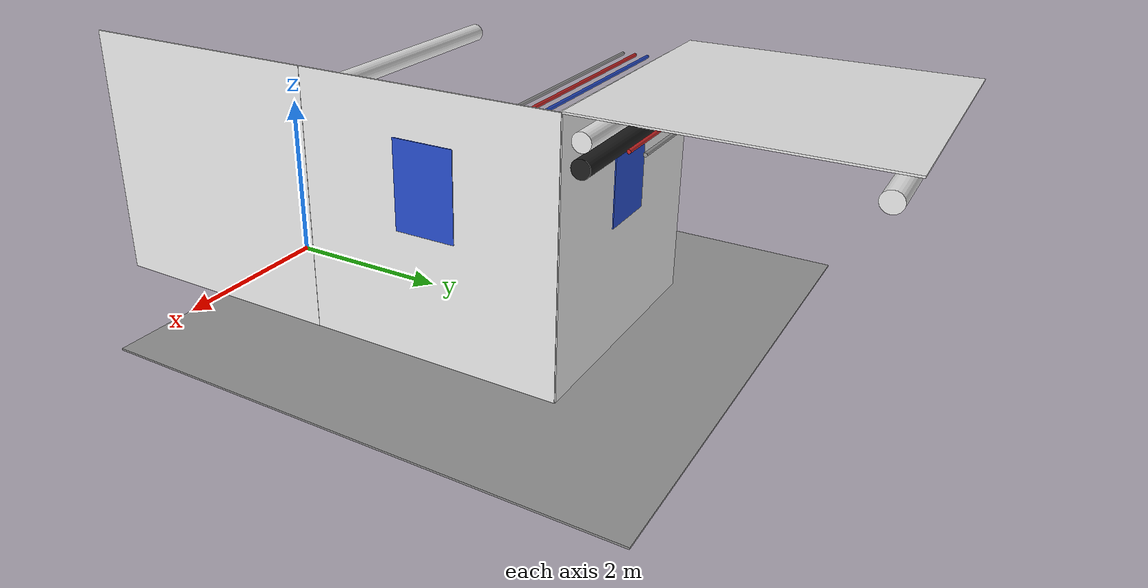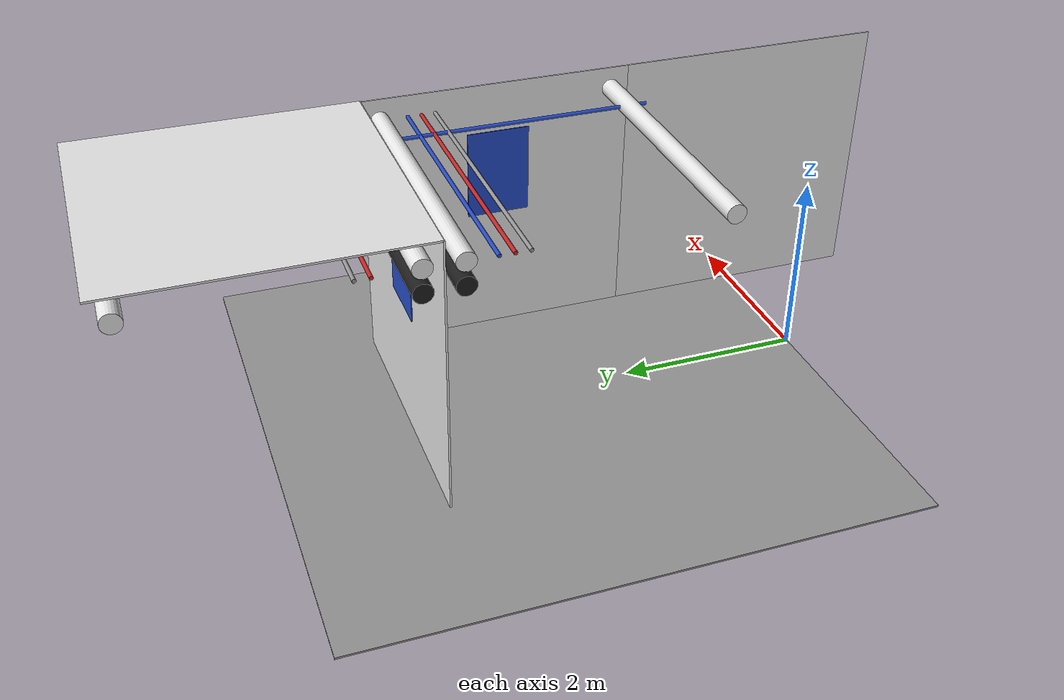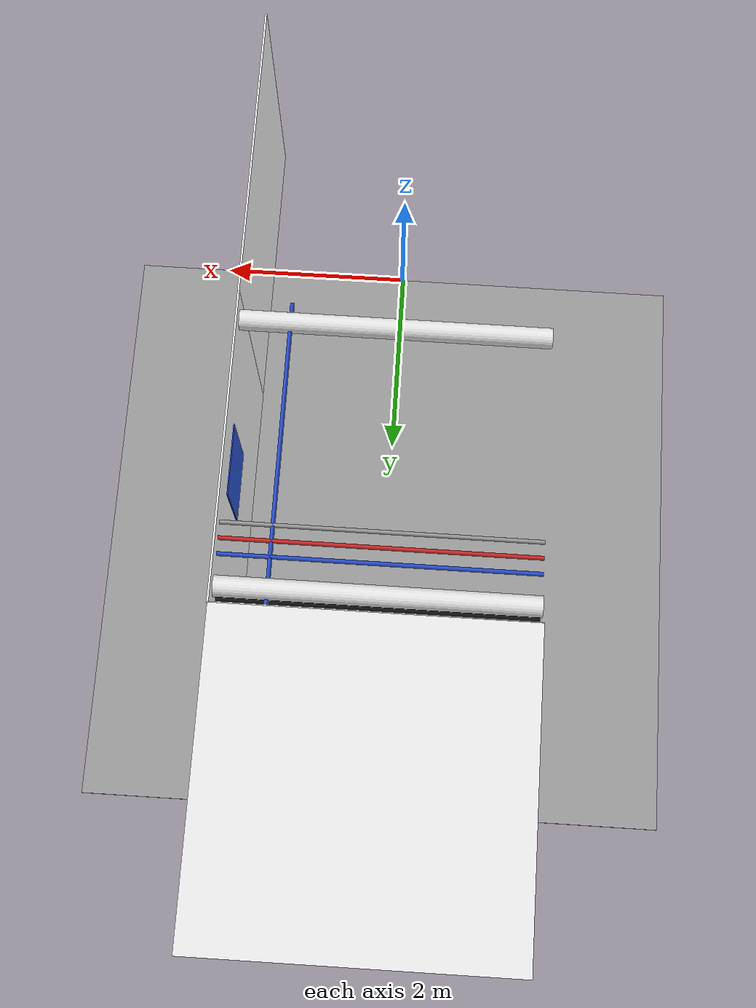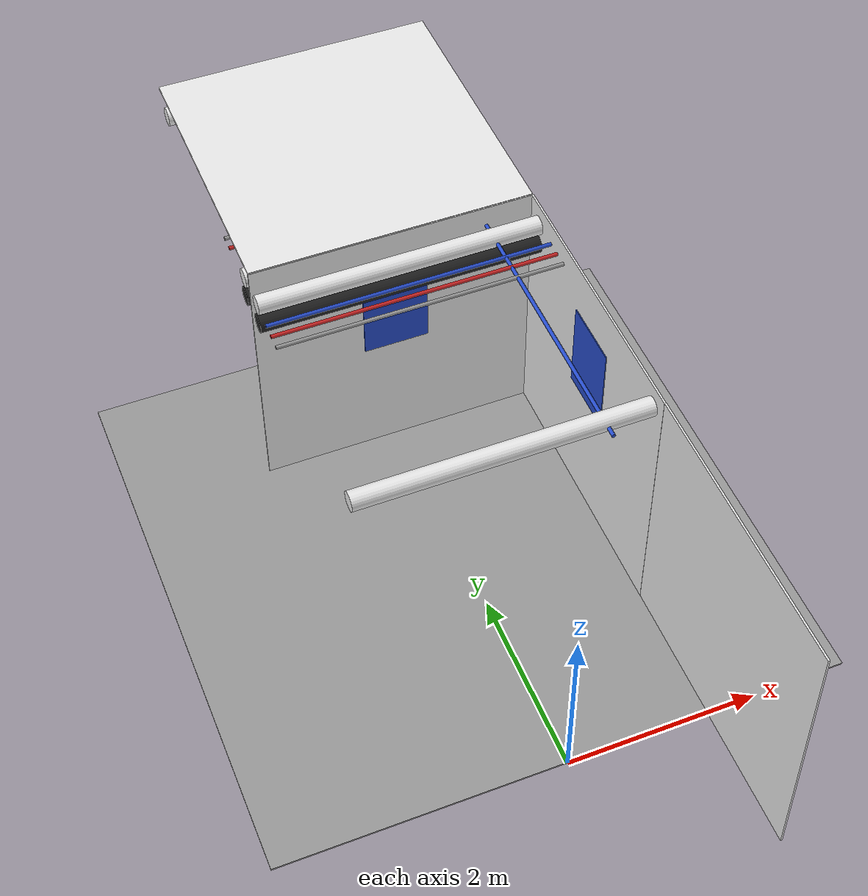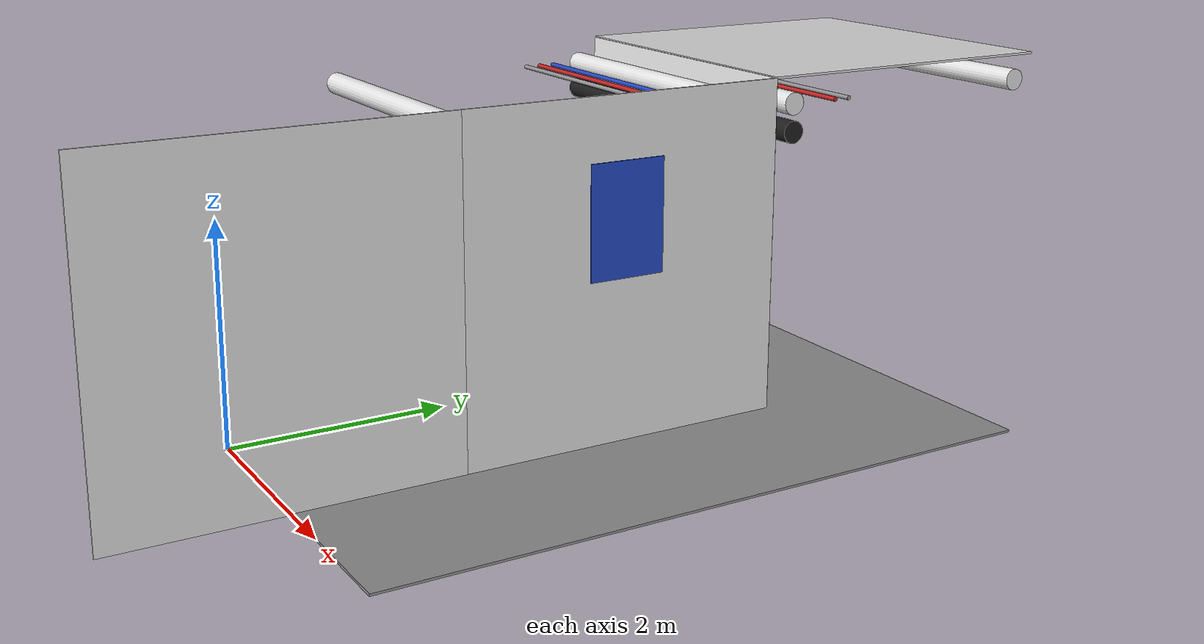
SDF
<sdf version="1.6">
 <world name="default">
  <model name="wall_right_0_0_0_0">
   <static>1</static>
   <pose>1.5 0.0 1.5 0.0 0.0 1.57</pose>
   <link name="link">
    <collision name="collision"><geometry><box><size>3.0 0.02 3.0</size></box></geometry></collision>
    <visual name="visual">
     <material>
      <script><name>Gazebo/White</name><uri>file://media/materials/scripts/gazebo.material</uri></script>
     </material>
     <geometry><box><size>3.0 0.02 3.0</size></box></geometry>
    </visual>
   </link>
  </model>
  <model name="wall_right_0_1_0_3">
   <static>1</static>
   <pose>1.5 3.0 1.5 0.0 0.0 1.57</pose>
   <link name="link">
    <collision name="collision"><geometry><box><size>3.0 0.02 3.0</size></box></geometry></collision>
    <visual name="visual">
     <material>
      <script><name>Gazebo/White</name><uri>file://media/materials/scripts/gazebo.material</uri></script>
     </material>
     <geometry><box><size>3.0 0.02 3.0</size></box></geometry>
    </visual>
   </link>
  </model>
  <model name="blue_pipe_right_0_1_0_3">
   <static>1</static>
   <pose>0.0 3.0 2.76 0.0 0.0 0.0</pose>
   <link name="link_0">
    <visual name="visual">
     <pose>1 0 0 1.57 0 0</pose>
     <geometry><cylinder><radius>0.02</radius><length>3.0</length></cylinder></geometry>
     <material>
      <script><uri>file://media/materials/scripts/gazebo.material</uri><name>Gazebo/Blue</name></script>
     </material>
    </visual>
    <collision name="collision">
     <pose>1 0 0 1.57 0 0</pose>
     <geometry><cylinder><radius>0.02</radius><length>3.0</length></cylinder></geometry>
    </collision>
   </link>
  </model>
  <model name="white_pipe_left_1_0_1_0_3">
   <static>1</static>
   <pose>0.0 3.0 2.76 0.0 0.0 1.57</pose>
   <link name="link_0">
    <visual name="visual">
     <pose>-1.3 0 0 1.57 0 0</pose>
     <geometry><cylinder><radius>0.1</radius><length>3.0</length></cylinder></geometry>
     <material>
      <script><uri>file://media/materials/scripts/gazebo.material</uri><name>Gazebo/White</name></script>
     </material>
    </visual>
    <collision name="collision">
     <pose>-1.3 0 0 1.57 0 0</pose>
     <geometry><cylinder><radius>0.1</radius><length>3.0</length></cylinder></geometry>
    </collision>
   </link>
  </model>
  <model name="white_pipe_right_1_0_1_0_3">
   <static>1</static>
   <pose>0.0 3.0 2.76 0.0 0.0 1.57</pose>
   <link name="link_0">
    <visual name="visual">
     <pose>1.3 0 0 1.57 0 0</pose>
     <geometry><cylinder><radius>0.1</radius><length>3.0</length></cylinder></geometry>
     <material>
      <script><uri>file://media/materials/scripts/gazebo.material</uri><name>Gazebo/White</name></script>
     </material>
    </visual>
    <collision name="collision">
     <pose>1.3 0 0 1.57 0 0</pose>
     <geometry><cylinder><radius>0.1</radius><length>3.0</length></cylinder></geometry>
    </collision>
   </link>
  </model>
  <model name="black_pipe_right_1_0_1_0_3">
   <static>1</static>
   <pose>0.0 3.0 2.76 0.0 0.0 1.57</pose>
   <link name="link_0">
    <visual name="visual">
     <pose>1.3 0 -0.25 1.57 0 0</pose>
     <geometry><cylinder><radius>0.1</radius><length>3.0</length></cylinder></geometry>
     <material>
      <script><uri>file://media/materials/scripts/gazebo.material</uri><name>Gazebo/Black</name></script>
     </material>
    </visual>
    <collision name="collision">
     <pose>1.3 0 -0.25 1.57 0 0</pose>
     <geometry><cylinder><radius>0.1</radius><length>3.0</length></cylinder></geometry>
    </collision>
   </link>
  </model>
  <model name="grey_pipe_right_1_0_1_0_3">
   <static>1</static>
   <pose>0.0 3.0 2.76 0.0 0.0 1.57</pose>
   <link name="link_0">
    <visual name="visual">
     <pose>0.7 0 0 1.57 0 0</pose>
     <geometry><cylinder><radius>0.02</radius><length>3.0</length></cylinder></geometry>
     <material>
      <script><uri>file://media/materials/scripts/gazebo.material</uri><name>Gazebo/Grey</name></script>
     </material>
    </visual>
    <collision name="collision">
     <pose>0.7 0 0 1.57 0 0</pose>
     <geometry><cylinder><radius>0.02</radius><length>3.0</length></cylinder></geometry>
    </collision>
   </link>
  </model>
  <model name="red_pipe_right_1_0_1_0_3">
   <static>1</static>
   <pose>0.0 3.0 2.76 0.0 0.0 1.57</pose>
   <link name="link_0">
    <visual name="visual">
     <pose>0.85 0 0 1.57 0 0</pose>
     <geometry><cylinder><radius>0.02</radius><length>3.0</length></cylinder></geometry>
     <material>
      <script><uri>file://media/materials/scripts/gazebo.material</uri><name>Gazebo/Red</name></script>
     </material>
    </visual>
    <collision name="collision">
     <pose>0.85 0 0 1.57 0 0</pose>
     <geometry><cylinder><radius>0.02</radius><length>3.0</length></cylinder></geometry>
    </collision>
   </link>
  </model>
  <model name="blue_pipe_right_1_0_1_0_3">
   <static>1</static>
   <pose>0.0 3.0 2.76 0.0 0.0 1.57</pose>
   <link name="link_0">
    <visual name="visual">
     <pose>1 0 0 1.57 0 0</pose>
     <geometry><cylinder><radius>0.02</radius><length>3.0</length></cylinder></geometry>
     <material>
      <script><uri>file://media/materials/scripts/gazebo.material</uri><name>Gazebo/Blue</name></script>
     </material>
    </visual>
    <collision name="collision">
     <pose>1 0 0 1.57 0 0</pose>
     <geometry><cylinder><radius>0.02</radius><length>3.0</length></cylinder></geometry>
    </collision>
   </link>
  </model>
  <model name="panel_0_1_0_3">
   <static>1</static>
   <pose>1.5 3.0 1.95 0.0 0.0 0.0</pose>
   <link name="link">
    <collision name="collision"><geometry><box><size>0.04 0.7 1</size></box></geometry></collision>
    <visual name="visual">
     <material>
      <script><name>Gazebo/Blue</name><uri>file://media/materials/scripts/gazebo.material</uri></script>
     </material>
     <geometry><box><size>0.04 0.7 1</size></box></geometry>
    </visual>
   </link>
  </model>
  <model name="wall_bottom_0_1_0_3">
   <static>1</static>
   <pose>0.0 3.0 0.0 0.0 0.0 0.0</pose>
   <link name="link">
    <collision name="collision"><geometry><box><size>6.0 6.0 0.02</size></box></geometry></collision>
    <visual name="visual">
     <material>
      <script><name>Gazebo/Grey</name><uri>file://media/materials/scripts/gazebo.material</uri></script>
     </material>
     <geometry><box><size>6.0 6.0 0.02</size></box></geometry>
    </visual>
   </link>
  </model>
  <model name="wall_right_0_2_0_3">
   <static>1</static>
   <pose>0.0 4.5 1.5 0.0 0.0 0.0</pose>
   <link name="link">
    <collision name="collision"><geometry><box><size>3.0 0.02 3.0</size></box></geometry></collision>
    <visual name="visual">
     <material>
      <script><name>Gazebo/White</name><uri>file://media/materials/scripts/gazebo.material</uri></script>
     </material>
     <geometry><box><size>3.0 0.02 3.0</size></box></geometry>
    </visual>
   </link>
  </model>
  <model name="wall_top_0_2_0_3">
   <static>1</static>
   <pose>0.0 6.0 3.0 1.57 0.0 -1.57</pose>
   <link name="link">
    <collision name="collision"><geometry><box><size>3.0 0.02 3.0</size></box></geometry></collision>
    <visual name="visual">
     <material>
      <script><name>Gazebo/White</name><uri>file://media/materials/scripts/gazebo.material</uri></script>
     </material>
     <geometry><box><size>3.0 0.02 3.0</size></box></geometry>
    </visual>
   </link>
  </model>
  <model name="white_pipe_left_0_2_0_3">
   <static>1</static>
   <pose>0.0 6.0 2.76 0.0 0.0 -1.57</pose>
   <link name="link_0">
    <visual name="visual">
     <pose>-1.3 0 0 1.57 0 0</pose>
     <geometry><cylinder><radius>0.1</radius><length>3.0</length></cylinder></geometry>
     <material>
      <script><uri>file://media/materials/scripts/gazebo.material</uri><name>Gazebo/White</name></script>
     </material>
    </visual>
    <collision name="collision">
     <pose>-1.3 0 0 1.57 0 0</pose>
     <geometry><cylinder><radius>0.1</radius><length>3.0</length></cylinder></geometry>
    </collision>
   </link>
  </model>
  <model name="white_pipe_right_0_2_0_3">
   <static>1</static>
   <pose>0.0 6.0 2.76 0.0 0.0 -1.57</pose>
   <link name="link_0">
    <visual name="visual">
     <pose>1.3 0 0 1.57 0 0</pose>
     <geometry><cylinder><radius>0.1</radius><length>3.0</length></cylinder></geometry>
     <material>
      <script><uri>file://media/materials/scripts/gazebo.material</uri><name>Gazebo/White</name></script>
     </material>
    </visual>
    <collision name="collision">
     <pose>1.3 0 0 1.57 0 0</pose>
     <geometry><cylinder><radius>0.1</radius><length>3.0</length></cylinder></geometry>
    </collision>
   </link>
  </model>
  <model name="black_pipe_right_0_2_0_3">
   <static>1</static>
   <pose>0.0 6.0 2.76 0.0 0.0 -1.57</pose>
   <link name="link_0">
    <visual name="visual">
     <pose>1.3 0 -0.25 1.57 0 0</pose>
     <geometry><cylinder><radius>0.1</radius><length>3.0</length></cylinder></geometry>
     <material>
      <script><uri>file://media/materials/scripts/gazebo.material</uri><name>Gazebo/Black</name></script>
     </material>
    </visual>
    <collision name="collision">
     <pose>1.3 0 -0.25 1.57 0 0</pose>
     <geometry><cylinder><radius>0.1</radius><length>3.0</length></cylinder></geometry>
    </collision>
   </link>
  </model>
  <model name="grey_pipe_right_0_2_0_3">
   <static>1</static>
   <pose>0.0 6.0 2.76 0.0 0.0 -1.57</pose>
   <link name="link_0">
    <visual name="visual">
     <pose>0.7 0 0 1.57 0 0</pose>
     <geometry><cylinder><radius>0.02</radius><length>3.0</length></cylinder></geometry>
     <material>
      <script><uri>file://media/materials/scripts/gazebo.material</uri><name>Gazebo/Grey</name></script>
     </material>
    </visual>
    <collision name="collision">
     <pose>0.7 0 0 1.57 0 0</pose>
     <geometry><cylinder><radius>0.02</radius><length>3.0</length></cylinder></geometry>
    </collision>
   </link>
  </model>
  <model name="red_pipe_right_0_2_0_3">
   <static>1</static>
   <pose>0.0 6.0 2.76 0.0 0.0 -1.57</pose>
   <link name="link_0">
    <visual name="visual">
     <pose>0.85 0 0 1.57 0 0</pose>
     <geometry><cylinder><radius>0.02</radius><length>3.0</length></cylinder></geometry>
     <material>
      <script><uri>file://media/materials/scripts/gazebo.material</uri><name>Gazebo/Red</name></script>
     </material>
    </visual>
    <collision name="collision">
     <pose>0.85 0 0 1.57 0 0</pose>
     <geometry><cylinder><radius>0.02</radius><length>3.0</length></cylinder></geometry>
    </collision>
   </link>
  </model>
  <model name="panel_0_2_0_3">
   <static>1</static>
   <pose>0.0 4.5 1.95 0.0 0.0 -1.57</pose>
   <link name="link">
    <collision name="collision"><geometry><box><size>0.04 0.7 1</size></box></geometry></collision>
    <visual name="visual">
     <material>
      <script><name>Gazebo/Blue</name><uri>file://media/materials/scripts/gazebo.material</uri></script>
     </material>
     <geometry><box><size>0.04 0.7 1</size></box></geometry>
    </visual>
   </link>
  </model>
 </world>
</sdf>
